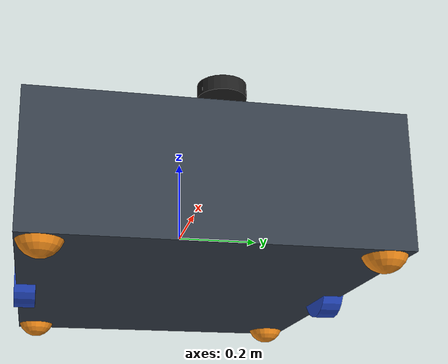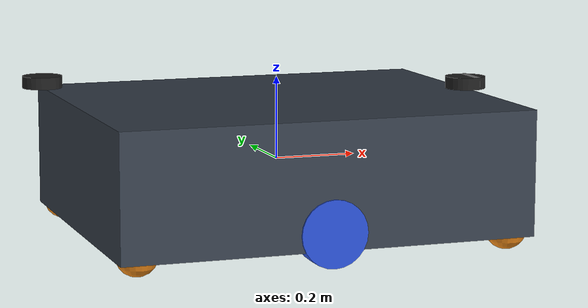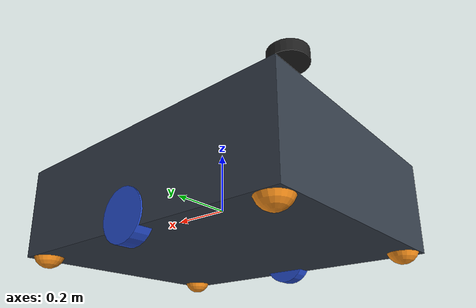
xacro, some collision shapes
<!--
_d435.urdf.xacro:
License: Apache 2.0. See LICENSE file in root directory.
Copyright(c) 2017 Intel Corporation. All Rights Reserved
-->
<?xml version='1.0'?>

<robot name="AMR" xmlns:xacro="http://www.ros.org/wiki/xacro">

    <xacro:include filename="$(find detection)/models/materials.xacro" />
    <xacro:include filename="$(find detection)/models/AMR.gazebo" />
    <xacro:include filename="$(find detection)/models/macros.xacro" />
    <xacro:include filename="$(find detection)/urdf/_d435.urdf.xacro" />

    <link name="base_footprint"/>

    <joint name="base_joint" type="fixed">
        <parent link="base_footprint"/>
        <child link="chassis"/>
        <origin xyz="0.0 0.0 0.0" rpy="0 0 0"/>
    </joint>

    <link name='chassis'>
        <!-- pose and inertial -->
        <pose>0 0 0.185 0 0 0</pose>
        <inertial>
            <mass value="120"/>
            <origin rpy="0 0 0" xyz="0 0 0.185"/>
            <inertia ixx="0.0395416666667" ixy="0" ixz="0" iyy="0.106208333333" iyz="0" izz="0.106208333333"/>
        </inertial>

        <!-- body -->
        <collision name='chassis_collision'>
            <geometry>
                <box size="1 0.8 0.3"/>
            </geometry>
        </collision>
        <visual name='chassis_visual'>
            <origin rpy="0 0 0" xyz="0 0 0"/>
            <geometry>
                <box size="1 0.8 0.3"/>
            </geometry>
            <material name="blue"/>
        </visual>

        <!-- caster -->
        <xacro:caster name="caster_TL" origin_xyz="0.45 0.35 -0.135"/>
        <xacro:caster name="caster_TR" origin_xyz="0.45 -0.35 -0.135"/>
        <xacro:caster name="caster_BL" origin_xyz="-0.45 0.35 -0.135"/>
        <xacro:caster name="caster_BR" origin_xyz="-0.45 -0.35 -0.135"/>

    </link>

    <!-- AMR Wheel -->
    <xacro:link_wheel name="left_wheel" />
    <gazebo reference="left_wheel">
        <mu1>100000.0</mu1>
        <mu2>100000.0</mu2>
        <kp>1000000.0</kp>
        <kd>100.0</kd>
        <minDepth>0.001</minDepth>
        <maxVel>1.0</maxVel>
    </gazebo>
    <xacro:link_wheel name="right_wheel" />
    <gazebo reference="right_wheel">
        <mu1>100000.0</mu1>
        <mu2>100000.0</mu2>
        <kp>1000000.0</kp>
        <kd>100.0</kd>
        <minDepth>0.001</minDepth>
        <maxVel>1.0</maxVel>
    </gazebo>

    <!-- Sensor -->
    <xacro:laser name="sensor_laser_front"/>
    <xacro:laser name="sensor_laser_back"/>

    <xacro:sensor_d435 name="camera" topics_ns="camera" parent="chassis" publish_pointcloud="true">
        <origin xyz="0.51 0 0.155" rpy="0 -0.086 0" />
    </xacro:sensor_d435>

    <!-- Joint -->
    <xacro:joint_wheel name="joint_left_wheel" origin_xyz="0 0.38 -0.11" parent="chassis" child="left_wheel"/>
    <xacro:joint_wheel name="joint_right_wheel" origin_xyz="0 -0.38 -0.11" parent="chassis" child="right_wheel"/>

    <joint name="joint_sensor_laser_front" type="fixed">
        <origin xyz="0.5 0 0.165" rpy="0 0 0"/>
        <parent link="chassis"/>
        <child link="sensor_laser_front"/>
    </joint>
    <joint name="joint_sensor_laser_back" type="fixed">
        <origin xyz="-0.5 0.35 0.165" rpy="0 0 3.14"/>
        <parent link="chassis"/>
        <child link="sensor_laser_back"/>
    </joint>
</robot>

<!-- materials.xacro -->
<robot>
    <material name="black">
        <color rgba="0.0 0.0 0.0 1.0"/>
    </material>
    <material name="blue">
        <color rgba="0.203125 0.23828125 0.28515625 1.0"/>
    </material>
    <material name="green">
        <color rgba="0.0 0.8 0.0 1.0"/>
    </material>
    <material name="grey">
        <color rgba="0.2 0.2 0.2 1.0"/>
    </material>
    <material name="orange">
        <color rgba="1.0 0.423529411765 0.0392156862745 1.0"/>
    </material>
    <material name="brown">
        <color rgba="0.870588235294 0.811764705882 0.764705882353 1.0"/>
    </material>
    <material name="red">
        <color rgba="0.80078125 0.12890625 0.1328125 1.0"/>
    </material>
    <material name="white">
        <color rgba="1.0 1.0 1.0 1.0"/>
    </material>
</robot>

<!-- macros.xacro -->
<robot xmlns:xacro="http://www.ros.org/wiki/xacro">
    <!-- Link Wheel -->
    <xacro:macro name="link_wheel" params="name">
        <link name="${name}">
            <inertial>
                <mass value="0.2"/>
                <origin rpy="0 1.5707 1.5707" xyz="0 0 0"/>
                <inertia ixx="0.000526666666667" ixy="0" ixz="0" iyy="0.000526666666667" iyz="0" izz="0.001"/>
            </inertial>
            <collision name="${name}_collision">
                <origin rpy="0 1.5707 1.5707" xyz="0 0 0"/>
                <geometry>
                    <cylinder length="0.05" radius="0.08"/>
                </geometry>
            </collision>
            <visual name="${name}_visual">
                <origin rpy="0 1.5707 1.5707" xyz="0 0 0"/>
                <geometry>
                    <cylinder length="0.05" radius="0.08"/>
                </geometry>
            </visual>
        </link>
    </xacro:macro>
     <!-- Caster -->
    <xacro:macro name="caster" params="name origin_xyz">
        <collision name='${name}_collision'>
            <origin rpy="0 0 0" xyz="${origin_xyz}"/>
            <geometry>
                <sphere radius="0.05"/>}
            </geometry>
            <surface>
                <friction>
                    <ode>
                        <mu>0</mu>
                        <mu2>0</mu2>
                        <slip1>1.0</slip1>
                        <slip2>1.0</slip2>
                    </ode>
                </friction>
            </surface>
        </collision>
        <visual name='${name}_visual'>
            <origin rpy="0 0 0" xyz="${origin_xyz}"/>
            <geometry>
                <sphere radius="0.05"/>
            </geometry>
        </visual>
    </xacro:macro>
    <!-- Joint Wheel -->
    <xacro:macro name="joint_wheel" params="name parent child origin_xyz">
        <joint type="continuous" name="${name}">
            <origin rpy="0 0 0" xyz="${origin_xyz}"/>
            <child link="${child}"/>
            <parent link="${parent}"/>
            <axis rpy="0 0 0" xyz="0 1 0"/>
            <limit effort="10000" velocity="1000"/>
            <joint_properties damping="1.0" friction="1.0"/>
        </joint>
    </xacro:macro>

    <!-- laser -->
    <xacro:macro name="laser" params="name">
        <link name="${name}">
            <inertial>
                <mass value="0.05"/>
                <origin rpy="0 0 0" xyz="0 0 0"/>
                <xacro:cylinder_inertia mass="0.05" l="0.03" r="0.05" />
            </inertial>
            <collision name="${name}_collision">
                <origin rpy="0 0 0" xyz="0 0 0"/>
                <geometry>
                    <cylinder length="0.03" radius="0.05"/>
                </geometry>
            </collision>
            <visual name="${name}_visual">
                <origin rpy="0 0 0" xyz="0 0 0"/>
                <geometry>
                    <cylinder length="0.03" radius="0.05"/>
                </geometry>
            </visual>
        </link>
    </xacro:macro>
    <!-- Inertia -->
    <xacro:macro name="cylinder_inertia" params="mass r l">
        <inertia  ixx="${mass*(3*r*r+l*l)/12}" ixy = "0" ixz = "0"
                    iyy="${mass*(3*r*r+l*l)/12}" iyz = "0"
                    izz="${mass*(r*r)/2}" />
    </xacro:macro>
</robot>

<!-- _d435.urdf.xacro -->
<robot name="sensor_d435" xmlns:xacro="http://ros.org/wiki/xacro">
  <!--File includes-->
  <xacro:include filename="$(find detection)/urdf/_d435.gazebo.xacro"/>

  <xacro:macro name="sensor_d435" params="name:=camera topics_ns:=camera parent *origin publish_pointcloud:=true">
    <xacro:property name="M_PI" value="3.1415926535897931" />

    <!-- The following values are approximate, and the camera node
     publishing TF values with actual calibrated camera extrinsic values -->
    <xacro:property name="d435_cam_depth_to_left_ir_offset" value="0.0"/>
    <xacro:property name="d435_cam_depth_to_right_ir_offset" value="-0.050"/>
    <xacro:property name="d435_cam_depth_to_color_offset" value="0.015"/>

    <!-- The following values model the aluminum peripherial case for the
    D435 camera, with the camera joint represented by the actual
    peripherial camera tripod mount -->
    <xacro:property name="d435_cam_width" value="0.090"/>
    <xacro:property name="d435_cam_height" value="0.025"/>
    <xacro:property name="d435_cam_depth" value="0.02505"/>
    <xacro:property name="d435_cam_mount_from_center_offset" value="0.0149"/>

    <!-- The following offset is relative the the physical D435 camera peripherial
    camera tripod mount -->
    <xacro:property name="d435_cam_depth_px" value="${d435_cam_mount_from_center_offset}"/>
    <xacro:property name="d435_cam_depth_py" value="0.0175"/>
    <xacro:property name="d435_cam_depth_pz" value="${d435_cam_height/2}"/>

    <material name="${name}_aluminum">
    <color rgba="0.5 0.5 0.5 1"/>
    </material>

    <!-- camera body, with origin at bottom screw mount -->
    <joint name="${name}_joint" type="fixed">
      <xacro:insert_block name="origin" />
      <parent link="${parent}"/>
      <child link="${name}_bottom_screw_frame" />
    </joint>
    <link name="${name}_bottom_screw_frame"/>

    <joint name="${name}_link_joint" type="fixed">
      <origin xyz="0 ${d435_cam_depth_py} ${d435_cam_depth_pz}" rpy="0 0 0"/>
      <parent link="${name}_bottom_screw_frame"/>
      <child link="${name}_link" />
    </joint>

    <link name="${name}_link">
      <visual>
      <origin xyz="${d435_cam_mount_from_center_offset} ${-d435_cam_depth_py} 0" rpy="${M_PI/2} 0 ${M_PI/2}"/>
        <geometry>
          <mesh filename="package://detection/meshes/d435.dae" />
        </geometry>
        <material name="${name}_aluminum"/>
      </visual>
      <collision>
        <origin xyz="0 ${-d435_cam_depth_py} 0" rpy="0 0 0"/>
        <geometry>
        <box size="${d435_cam_depth} ${d435_cam_width} ${d435_cam_height}"/>
        </geometry>
      </collision>
      <inertial>
        <!-- The following are not reliable values, and should not be used for modeling -->
        <mass value="0.564" />
        <origin xyz="0 0 0" />
        <inertia ixx="0.003881243" ixy="0.0" ixz="0.0" iyy="0.000498940" iyz="0.0" izz="0.003879257" />
      </inertial>
    </link>

    <!-- camera depth joints and links -->
    <joint name="${name}_depth_joint" type="fixed">
      <origin xyz="0 0 0" rpy="0 0 0"/>
      <parent link="${name}_link"/>
      <child link="${name}_depth_frame" />
    </joint>
    <link name="${name}_depth_frame"/>

    <joint name="${name}_depth_optical_joint" type="fixed">
      <origin xyz="0 0 0" rpy="${-M_PI/2} 0 ${-M_PI/2}" />
      <parent link="${name}_depth_frame" />
      <child link="${name}_depth_optical_frame" />
    </joint>
    <link name="${name}_depth_optical_frame"/>

    <!-- camera left IR joints and links -->
    <joint name="${name}_left_ir_joint" type="fixed">
      <origin xyz="0 ${d435_cam_depth_to_left_ir_offset} 0" rpy="0 0 0" />
      <parent link="${name}_depth_frame" />
      <child link="${name}_left_ir_frame" />
    </joint>
    <link name="${name}_left_ir_frame"/>

    <joint name="${name}_left_ir_optical_joint" type="fixed">
      <origin xyz="0 0 0" rpy="${-M_PI/2} 0 ${-M_PI/2}" />
      <parent link="${name}_left_ir_frame" />
      <child link="${name}_left_ir_optical_frame" />
    </joint>
    <link name="${name}_left_ir_optical_frame"/>

    <!-- camera right IR joints and links -->
    <joint name="${name}_right_ir_joint" type="fixed">
      <origin xyz="0 ${d435_cam_depth_to_right_ir_offset} 0" rpy="0 0 0" />
      <parent link="${name}_depth_frame" />
      <child link="${name}_right_ir_frame" />
    </joint>
    <link name="${name}_right_ir_frame"/>

    <joint name="${name}_right_ir_optical_joint" type="fixed">
      <origin xyz="0 0 0" rpy="${-M_PI/2} 0 ${-M_PI/2}" />
      <parent link="${name}_right_ir_frame" />
      <child link="${name}_right_ir_optical_frame" />
    </joint>
    <link name="${name}_right_ir_optical_frame"/>

    <!-- camera color joints and links -->
    <joint name="${name}_color_joint" type="fixed">
      <origin xyz="0 ${d435_cam_depth_to_color_offset} 0" rpy="0 0 0" />
      <parent link="${name}_depth_frame" />
      <child link="${name}_color_frame" />
    </joint>
    <link name="${name}_color_frame"/>

    <joint name="${name}_color_optical_joint" type="fixed">
      <origin xyz="0 0 0" rpy="${-M_PI/2} 0 ${-M_PI/2}" />
      <parent link="${name}_color_frame" />
      <child link="${name}_color_optical_frame" />
    </joint>
    <link name="${name}_color_optical_frame"/>

    <!-- Realsense Gazebo Plugin -->
    <xacro:gazebo_d435 camera_name="${name}" reference_link="${name}_link" topics_ns="${topics_ns}" depth_optical_frame="${name}_depth_optical_frame" color_optical_frame="${name}_color_optical_frame" infrared1_optical_frame="${name}_left_ir_optical_frame" infrared2_optical_frame="${name}_right_ir_optical_frame" publish_pointcloud="${publish_pointcloud}"/>

  </xacro:macro>
</robot>
